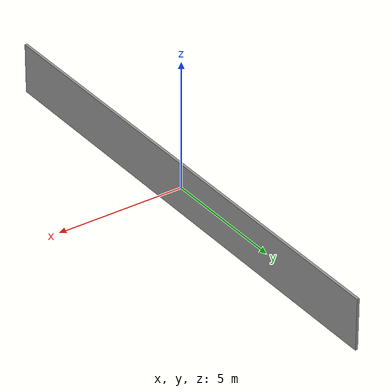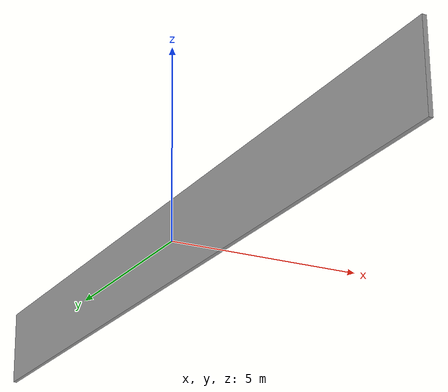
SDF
<?xml version="1.0" ?>
<sdf version="1.6">
  <model name="wall">
    <static>true</static>
    <link name="link">
      <collision name="collision">
        <geometry>
          <box>
            <size>0.1 20 2</size> <!-- Thin wall: 0.1m thick, 20m long, 2m tall -->
          </box>
        </geometry>
      </collision>
      <visual name="visual">
        <geometry>
          <box>
            <size>0.1 20 2</size>
          </box>
        </geometry>
        <material>
          <ambient>0.6 0.6 0.6 1</ambient>
          <diffuse>0.6 0.6 0.6 1</diffuse>
        </material>
      </visual>
    </link>
  </model>
</sdf>
